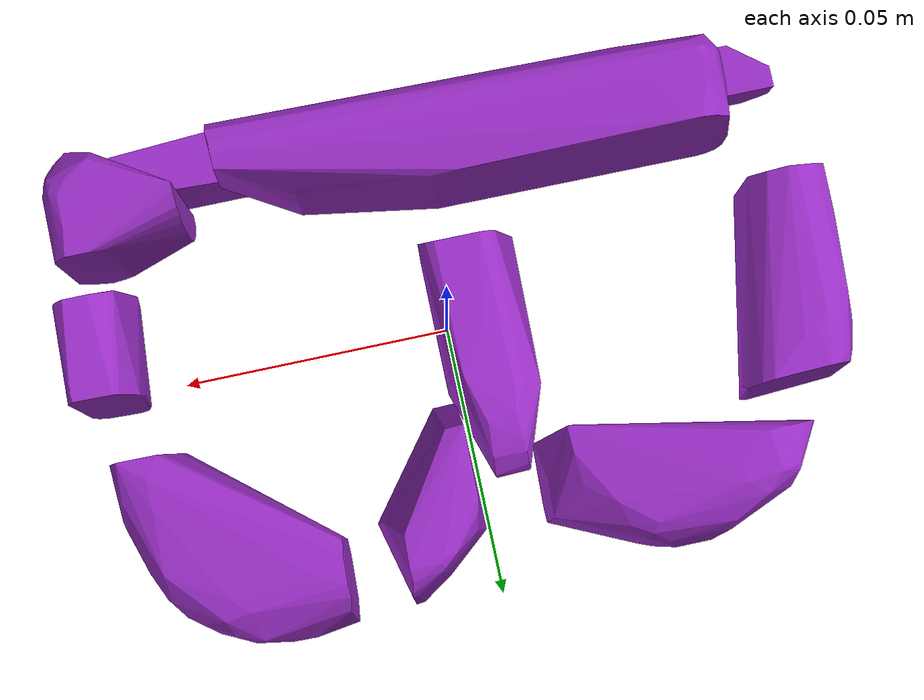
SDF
<?xml version='1.0' encoding='UTF-8'?>
<!-- This SDF was autogenerated by obj_to_drake_sdf.py -->
<sdf version="1.7">
  <model name="B_shape_video">
    <link name="B_shape_video">
      <inertial>
        <pose>0 0 0 0 0 0</pose>
        <mass>0.05</mass>
        <inertia>
          <ixx>6.4204861e-05</ixx>
          <iyy>0.00011265702</iyy>
          <izz>0.00016119903</izz>
          <ixy>-2.4156755e-06</ixy>
          <ixz>2.3592984e-06</ixz>
          <iyz>1.0485316e-06</iyz>
        </inertia>
      </inertial>
      <visual name="convex_0">
        <pose>0 0 0 0 0 0</pose>
        <geometry>
          <mesh>
            <uri>B_shape_video_convex_0.obj</uri>
          </mesh>
        </geometry>
        <material>
          <diffuse>0.5882352941176471 0.17254901960784313 0.7607843137254902 1</diffuse>
        </material>
      </visual>
      <collision name="convex_0_volume">
        <pose>0 0 0 0 0 0</pose>
        <geometry>
          <mesh>
            <uri>B_shape_video_convex_0.obj</uri>
          </mesh>
        </geometry>
        <drake:proximity_properties xmlns:drake="uri:drake">
          <drake:compliant_hydroelastic/>
          <drake:hydroelastic_modulus> 3.0e7 </drake:hydroelastic_modulus>
          <drake:mesh_resolution_hint> 0.02 </drake:mesh_resolution_hint>
          <drake:hunt_crossley_dissipation>10</drake:hunt_crossley_dissipation>
          <drake:mu_dynamic>0.3</drake:mu_dynamic>
        </drake:proximity_properties>
      </collision>
      <visual name="convex_1">
        <pose>0 0 0 0 0 0</pose>
        <geometry>
          <mesh>
            <uri>B_shape_video_convex_1.obj</uri>
          </mesh>
        </geometry>
        <material>
          <diffuse>0.5882352941176471 0.17254901960784313 0.7607843137254902 1</diffuse>
        </material>
      </visual>
      <collision name="convex_1_volume">
        <pose>0 0 0 0 0 0</pose>
        <geometry>
          <mesh>
            <uri>B_shape_video_convex_1.obj</uri>
          </mesh>
        </geometry>
        <drake:proximity_properties xmlns:drake="uri:drake">
          <drake:compliant_hydroelastic/>
          <drake:hydroelastic_modulus> 3.0e7 </drake:hydroelastic_modulus>
          <drake:mesh_resolution_hint> 0.02 </drake:mesh_resolution_hint>
          <drake:hunt_crossley_dissipation>10</drake:hunt_crossley_dissipation>
          <drake:mu_dynamic>0.3</drake:mu_dynamic>
        </drake:proximity_properties>
      </collision>
      <visual name="convex_2">
        <pose>0 0 0 0 0 0</pose>
        <geometry>
          <mesh>
            <uri>B_shape_video_convex_2.obj</uri>
          </mesh>
        </geometry>
        <material>
          <diffuse>0.5882352941176471 0.17254901960784313 0.7607843137254902 1</diffuse>
        </material>
      </visual>
      <collision name="convex_2_volume">
        <pose>0 0 0 0 0 0</pose>
        <geometry>
          <mesh>
            <uri>B_shape_video_convex_2.obj</uri>
          </mesh>
        </geometry>
        <drake:proximity_properties xmlns:drake="uri:drake">
          <drake:compliant_hydroelastic/>
          <drake:hydroelastic_modulus> 3.0e7 </drake:hydroelastic_modulus>
          <drake:mesh_resolution_hint> 0.02 </drake:mesh_resolution_hint>
          <drake:hunt_crossley_dissipation>10</drake:hunt_crossley_dissipation>
          <drake:mu_dynamic>0.3</drake:mu_dynamic>
        </drake:proximity_properties>
      </collision>
      <visual name="convex_3">
        <pose>0 0 0 0 0 0</pose>
        <geometry>
          <mesh>
            <uri>B_shape_video_convex_3.obj</uri>
          </mesh>
        </geometry>
        <material>
          <diffuse>0.5882352941176471 0.17254901960784313 0.7607843137254902 1</diffuse>
        </material>
      </visual>
      <collision name="convex_3_volume">
        <pose>0 0 0 0 0 0</pose>
        <geometry>
          <mesh>
            <uri>B_shape_video_convex_3.obj</uri>
          </mesh>
        </geometry>
        <drake:proximity_properties xmlns:drake="uri:drake">
          <drake:compliant_hydroelastic/>
          <drake:hydroelastic_modulus> 3.0e7 </drake:hydroelastic_modulus>
          <drake:mesh_resolution_hint> 0.02 </drake:mesh_resolution_hint>
          <drake:hunt_crossley_dissipation>10</drake:hunt_crossley_dissipation>
          <drake:mu_dynamic>0.3</drake:mu_dynamic>
        </drake:proximity_properties>
      </collision>
      <visual name="convex_4">
        <pose>0 0 0 0 0 0</pose>
        <geometry>
          <mesh>
            <uri>B_shape_video_convex_4.obj</uri>
          </mesh>
        </geometry>
        <material>
          <diffuse>0.5882352941176471 0.17254901960784313 0.7607843137254902 1</diffuse>
        </material>
      </visual>
      <collision name="convex_4_volume">
        <pose>0 0 0 0 0 0</pose>
        <geometry>
          <mesh>
            <uri>B_shape_video_convex_4.obj</uri>
          </mesh>
        </geometry>
        <drake:proximity_properties xmlns:drake="uri:drake">
          <drake:compliant_hydroelastic/>
          <drake:hydroelastic_modulus> 3.0e7 </drake:hydroelastic_modulus>
          <drake:mesh_resolution_hint> 0.02 </drake:mesh_resolution_hint>
          <drake:hunt_crossley_dissipation>10</drake:hunt_crossley_dissipation>
          <drake:mu_dynamic>0.3</drake:mu_dynamic>
        </drake:proximity_properties>
      </collision>
      <visual name="convex_5">
        <pose>0 0 0 0 0 0</pose>
        <geometry>
          <mesh>
            <uri>B_shape_video_convex_5.obj</uri>
          </mesh>
        </geometry>
        <material>
          <diffuse>0.5882352941176471 0.17254901960784313 0.7607843137254902 1</diffuse>
        </material>
      </visual>
      <collision name="convex_5_volume">
        <pose>0 0 0 0 0 0</pose>
        <geometry>
          <mesh>
            <uri>B_shape_video_convex_5.obj</uri>
          </mesh>
        </geometry>
        <drake:proximity_properties xmlns:drake="uri:drake">
          <drake:compliant_hydroelastic/>
          <drake:hydroelastic_modulus> 3.0e7 </drake:hydroelastic_modulus>
          <drake:mesh_resolution_hint> 0.02 </drake:mesh_resolution_hint>
          <drake:hunt_crossley_dissipation>10</drake:hunt_crossley_dissipation>
          <drake:mu_dynamic>0.3</drake:mu_dynamic>
        </drake:proximity_properties>
      </collision>
      <visual name="convex_6">
        <pose>0 0 0 0 0 0</pose>
        <geometry>
          <mesh>
            <uri>B_shape_video_convex_6.obj</uri>
          </mesh>
        </geometry>
        <material>
          <diffuse>0.5882352941176471 0.17254901960784313 0.7607843137254902 1</diffuse>
        </material>
      </visual>
      <collision name="convex_6_volume">
        <pose>0 0 0 0 0 0</pose>
        <geometry>
          <mesh>
            <uri>B_shape_video_convex_6.obj</uri>
          </mesh>
        </geometry>
        <drake:proximity_properties xmlns:drake="uri:drake">
          <drake:compliant_hydroelastic/>
          <drake:hydroelastic_modulus> 3.0e7 </drake:hydroelastic_modulus>
          <drake:mesh_resolution_hint> 0.02 </drake:mesh_resolution_hint>
          <drake:hunt_crossley_dissipation>10</drake:hunt_crossley_dissipation>
          <drake:mu_dynamic>0.3</drake:mu_dynamic>
        </drake:proximity_properties>
      </collision>
      <visual name="convex_7">
        <pose>0 0 0 0 0 0</pose>
        <geometry>
          <mesh>
            <uri>B_shape_video_convex_7.obj</uri>
          </mesh>
        </geometry>
        <material>
          <diffuse>0.5882352941176471 0.17254901960784313 0.7607843137254902 1</diffuse>
        </material>
      </visual>
      <collision name="convex_7_volume">
        <pose>0 0 0 0 0 0</pose>
        <geometry>
          <mesh>
            <uri>B_shape_video_convex_7.obj</uri>
          </mesh>
        </geometry>
        <drake:proximity_properties xmlns:drake="uri:drake">
          <drake:compliant_hydroelastic/>
          <drake:hydroelastic_modulus> 3.0e7 </drake:hydroelastic_modulus>
          <drake:mesh_resolution_hint> 0.02 </drake:mesh_resolution_hint>
          <drake:hunt_crossley_dissipation>10</drake:hunt_crossley_dissipation>
          <drake:mu_dynamic>0.3</drake:mu_dynamic>
        </drake:proximity_properties>
      </collision>
      <visual name="convex_8">
        <pose>0 0 0 0 0 0</pose>
        <geometry>
          <mesh>
            <uri>B_shape_video_convex_8.obj</uri>
          </mesh>
        </geometry>
        <material>
          <diffuse>0.5882352941176471 0.17254901960784313 0.7607843137254902 1</diffuse>
        </material>
      </visual>
      <collision name="convex_8_volume">
        <pose>0 0 0 0 0 0</pose>
        <geometry>
          <mesh>
            <uri>B_shape_video_convex_8.obj</uri>
          </mesh>
        </geometry>
        <drake:proximity_properties xmlns:drake="uri:drake">
          <drake:compliant_hydroelastic/>
          <drake:hydroelastic_modulus> 3.0e7 </drake:hydroelastic_modulus>
          <drake:mesh_resolution_hint> 0.02 </drake:mesh_resolution_hint>
          <drake:hunt_crossley_dissipation>10</drake:hunt_crossley_dissipation>
          <drake:mu_dynamic>0.3</drake:mu_dynamic>
        </drake:proximity_properties>
      </collision>
      <visual name="convex_9">
        <pose>0 0 0 0 0 0</pose>
        <geometry>
          <mesh>
            <uri>B_shape_video_convex_9.obj</uri>
          </mesh>
        </geometry>
        <material>
          <diffuse>0.5882352941176471 0.17254901960784313 0.7607843137254902 1</diffuse>
        </material>
      </visual>
      <collision name="convex_9_volume">
        <pose>0 0 0 0 0 0</pose>
        <geometry>
          <mesh>
            <uri>B_shape_video_convex_9.obj</uri>
          </mesh>
        </geometry>
        <drake:proximity_properties xmlns:drake="uri:drake">
          <drake:compliant_hydroelastic/>
          <drake:hydroelastic_modulus> 3.0e7 </drake:hydroelastic_modulus>
          <drake:mesh_resolution_hint> 0.02 </drake:mesh_resolution_hint>
          <drake:hunt_crossley_dissipation>10</drake:hunt_crossley_dissipation>
          <drake:mu_dynamic>0.3</drake:mu_dynamic>
        </drake:proximity_properties>
      </collision>
    </link>
  </model>
</sdf>
